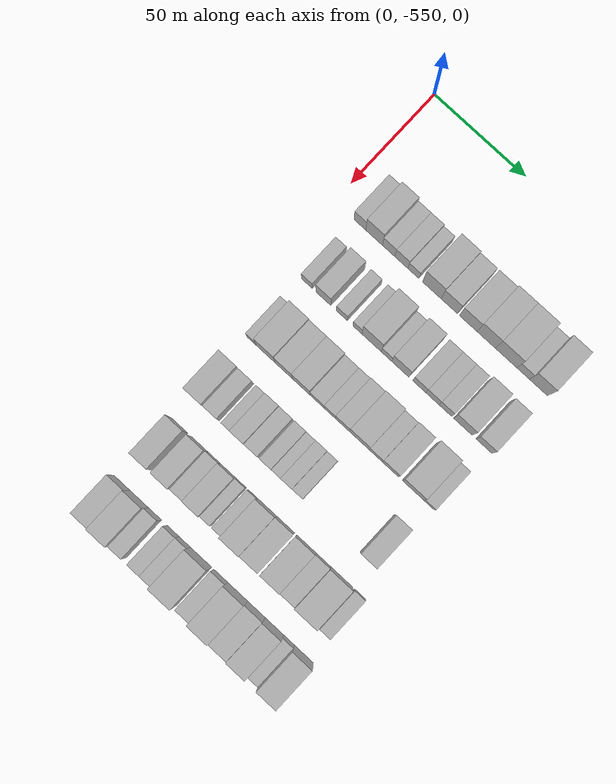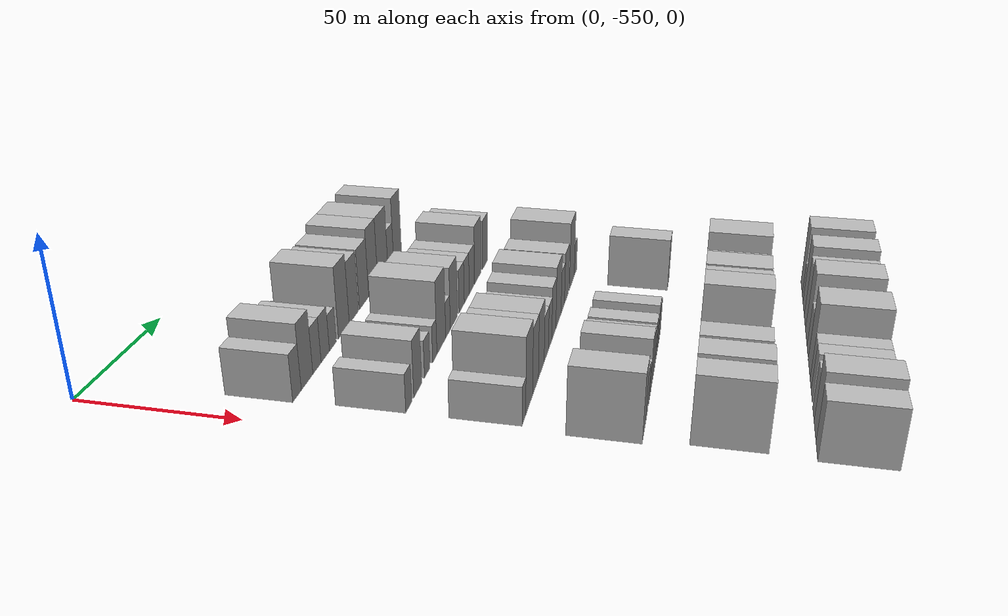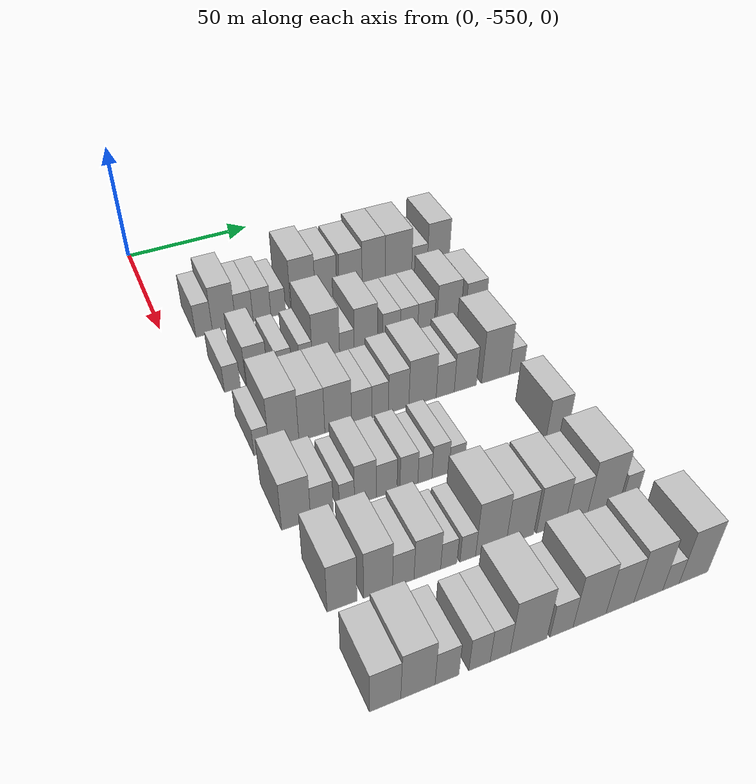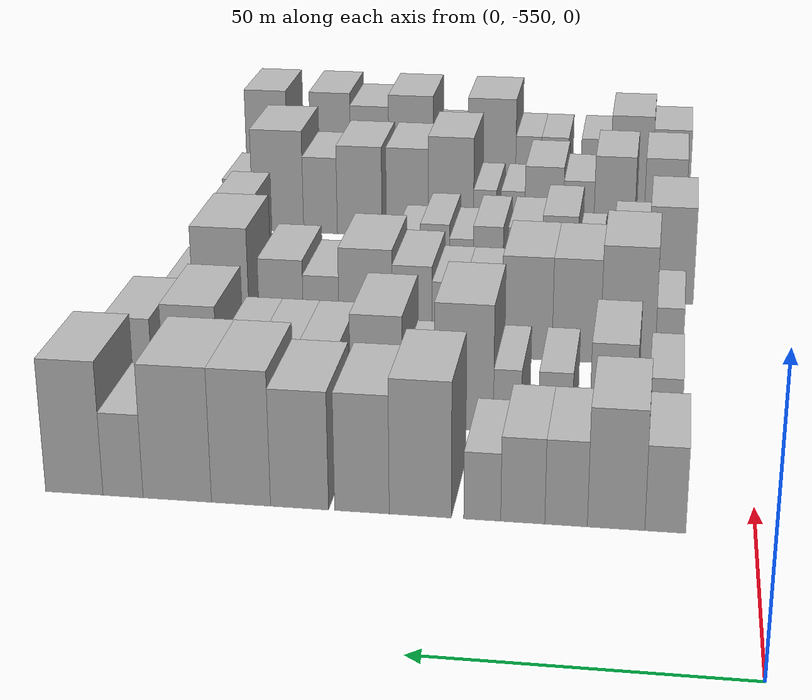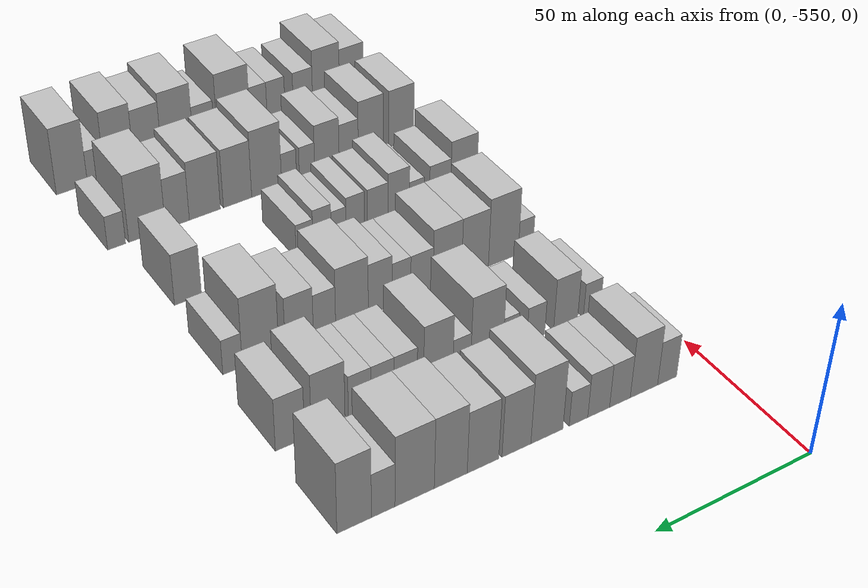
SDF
<sdf version="1.6">
 <world name="default">
  <model name="building_1">
   <static>1</static>
   <pose>50.0000 -535.7820 0 0.000000 0.000000 0.000000</pose>
   <link name="link">
    <pose>0 0 7.50 0 0 0</pose>
    <collision name="collision"><geometry><box><size>20.0000 6.4360 15.0000</size></box></geometry></collision>
    <visual name="visual">
     <cast_shadows>0</cast_shadows>
     <geometry><box><size>20.0000 6.4360 15.0000</size></box></geometry>
     <material>
      <script>
       <uri>model://HANNAS_wall/materials/scripts</uri>
       <uri>model://HANNAS_wall/materials/textures</uri>
       <name>vrc/HANNAS_wall</name>
      </script>
     </material>
    </visual>
   </link>
  </model>
  <model name="building_2">
   <static>1</static>
   <pose>50.0000 -528.0198 0 0.000000 0.000000 0.000000</pose>
   <link name="link">
    <pose>0 0 10.50 0 0 0</pose>
    <collision name="collision"><geometry><box><size>20.0000 9.0884 21.0000</size></box></geometry></collision>
    <visual name="visual">
     <cast_shadows>0</cast_shadows>
     <geometry><box><size>20.0000 9.0884 21.0000</size></box></geometry>
     <material>
      <script>
       <uri>model://HANNAS_wall/materials/scripts</uri>
       <uri>model://HANNAS_wall/materials/textures</uri>
       <name>vrc/HANNAS_wall</name>
      </script>
     </material>
    </visual>
   </link>
  </model>
  <model name="building_3">
   <static>1</static>
   <pose>50.0000 -520.0924 0 0.000000 0.000000 0.000000</pose>
   <link name="link">
    <pose>0 0 7.50 0 0 0</pose>
    <collision name="collision"><geometry><box><size>20.0000 6.7663 15.0000</size></box></geometry></collision>
    <visual name="visual">
     <cast_shadows>0</cast_shadows>
     <geometry><box><size>20.0000 6.7663 15.0000</size></box></geometry>
     <material>
      <script>
       <uri>model://HANNAS_wall/materials/scripts</uri>
       <uri>model://HANNAS_wall/materials/textures</uri>
       <name>vrc/HANNAS_wall</name>
      </script>
     </material>
    </visual>
   </link>
  </model>
  <model name="building_4">
   <static>1</static>
   <pose>50.0000 -513.1745 0 0.000000 0.000000 0.000000</pose>
   <link name="link">
    <pose>0 0 7.50 0 0 0</pose>
    <collision name="collision"><geometry><box><size>20.0000 7.0696 15.0000</size></box></geometry></collision>
    <visual name="visual">
     <cast_shadows>0</cast_shadows>
     <geometry><box><size>20.0000 7.0696 15.0000</size></box></geometry>
     <material>
      <script>
       <uri>model://HANNAS_wall/materials/scripts</uri>
       <uri>model://HANNAS_wall/materials/textures</uri>
       <name>vrc/HANNAS_wall</name>
      </script>
     </material>
    </visual>
   </link>
  </model>
  <model name="building_5">
   <static>1</static>
   <pose>50.0000 -506.6680 0 0.000000 0.000000 0.000000</pose>
   <link name="link">
    <pose>0 0 6.00 0 0 0</pose>
    <collision name="collision"><geometry><box><size>20.0000 5.9433 12.0000</size></box></geometry></collision>
    <visual name="visual">
     <cast_shadows>0</cast_shadows>
     <geometry><box><size>20.0000 5.9433 12.0000</size></box></geometry>
     <material>
      <script>
       <uri>model://HANNAS_wall/materials/scripts</uri>
       <uri>model://HANNAS_wall/materials/textures</uri>
       <name>vrc/HANNAS_wall</name>
      </script>
     </material>
    </visual>
   </link>
  </model>
  <model name="building_6">
   <static>1</static>
   <pose>50.0000 -496.6486 0 0.000000 0.000000 0.000000</pose>
   <link name="link">
    <pose>0 0 12.00 0 0 0</pose>
    <collision name="collision"><geometry><box><size>20.0000 10.0956 24.0000</size></box></geometry></collision>
    <visual name="visual">
     <cast_shadows>0</cast_shadows>
     <geometry><box><size>20.0000 10.0956 24.0000</size></box></geometry>
     <material>
      <script>
       <uri>model://HANNAS_wall/materials/scripts</uri>
       <uri>model://HANNAS_wall/materials/textures</uri>
       <name>vrc/HANNAS_wall</name>
      </script>
     </material>
    </visual>
   </link>
  </model>
  <model name="building_7">
   <static>1</static>
   <pose>50.0000 -487.1388 0 0.000000 0.000000 0.000000</pose>
   <link name="link">
    <pose>0 0 10.50 0 0 0</pose>
    <collision name="collision"><geometry><box><size>20.0000 8.9242 21.0000</size></box></geometry></collision>
    <visual name="visual">
     <cast_shadows>0</cast_shadows>
     <geometry><box><size>20.0000 8.9242 21.0000</size></box></geometry>
     <material>
      <script>
       <uri>model://HANNAS_wall/materials/scripts</uri>
       <uri>model://HANNAS_wall/materials/textures</uri>
       <name>vrc/HANNAS_wall</name>
      </script>
     </material>
    </visual>
   </link>
  </model>
  <model name="building_8">
   <static>1</static>
   <pose>50.0000 -476.8847 0 0.000000 0.000000 0.000000</pose>
   <link name="link">
    <pose>0 0 10.50 0 0 0</pose>
    <collision name="collision"><geometry><box><size>20.0000 9.5838 21.0000</size></box></geometry></collision>
    <visual name="visual">
     <cast_shadows>0</cast_shadows>
     <geometry><box><size>20.0000 9.5838 21.0000</size></box></geometry>
     <material>
      <script>
       <uri>model://HANNAS_wall/materials/scripts</uri>
       <uri>model://HANNAS_wall/materials/textures</uri>
       <name>vrc/HANNAS_wall</name>
      </script>
     </material>
    </visual>
   </link>
  </model>
  <model name="building_9">
   <static>1</static>
   <pose>50.0000 -467.1812 0 0.000000 0.000000 0.000000</pose>
   <link name="link">
    <pose>0 0 12.00 0 0 0</pose>
    <collision name="collision"><geometry><box><size>20.0000 9.8232 24.0000</size></box></geometry></collision>
    <visual name="visual">
     <cast_shadows>0</cast_shadows>
     <geometry><box><size>20.0000 9.8232 24.0000</size></box></geometry>
     <material>
      <script>
       <uri>model://HANNAS_wall/materials/scripts</uri>
       <uri>model://HANNAS_wall/materials/textures</uri>
       <name>vrc/HANNAS_wall</name>
      </script>
     </material>
    </visual>
   </link>
  </model>
  <model name="building_10">
   <static>1</static>
   <pose>50.0000 -456.5268 0 0.000000 0.000000 0.000000</pose>
   <link name="link">
    <pose>0 0 12.00 0 0 0</pose>
    <collision name="collision"><geometry><box><size>20.0000 11.4857 24.0000</size></box></geometry></collision>
    <visual name="visual">
     <cast_shadows>0</cast_shadows>
     <geometry><box><size>20.0000 11.4857 24.0000</size></box></geometry>
     <material>
      <script>
       <uri>model://HANNAS_wall/materials/scripts</uri>
       <uri>model://HANNAS_wall/materials/textures</uri>
       <name>vrc/HANNAS_wall</name>
      </script>
     </material>
    </visual>
   </link>
  </model>
  <model name="building_11">
   <static>1</static>
   <pose>50.0000 -447.3915 0 0.000000 0.000000 0.000000</pose>
   <link name="link">
    <pose>0 0 7.50 0 0 0</pose>
    <collision name="collision"><geometry><box><size>20.0000 6.7850 15.0000</size></box></geometry></collision>
    <visual name="visual">
     <cast_shadows>0</cast_shadows>
     <geometry><box><size>20.0000 6.7850 15.0000</size></box></geometry>
     <material>
      <script>
       <uri>model://HANNAS_wall/materials/scripts</uri>
       <uri>model://HANNAS_wall/materials/textures</uri>
       <name>vrc/HANNAS_wall</name>
      </script>
     </material>
    </visual>
   </link>
  </model>
  <model name="building_12">
   <static>1</static>
   <pose>50.0000 -439.1225 0 0.000000 0.000000 0.000000</pose>
   <link name="link">
    <pose>0 0 12.00 0 0 0</pose>
    <collision name="collision"><geometry><box><size>20.0000 9.7531 24.0000</size></box></geometry></collision>
    <visual name="visual">
     <cast_shadows>0</cast_shadows>
     <geometry><box><size>20.0000 9.7531 24.0000</size></box></geometry>
     <material>
      <script>
       <uri>model://HANNAS_wall/materials/scripts</uri>
       <uri>model://HANNAS_wall/materials/textures</uri>
       <name>vrc/HANNAS_wall</name>
      </script>
     </material>
    </visual>
   </link>
  </model>
  <model name="building_115">
   <static>1</static>
   <pose>82.0000 -535.0732 0 0.000000 0.000000 0.000000</pose>
   <link name="link">
    <pose>0 0 6.00 0 0 0</pose>
    <collision name="collision"><geometry><box><size>20.0000 5.8535 12.0000</size></box></geometry></collision>
    <visual name="visual">
     <cast_shadows>0</cast_shadows>
     <geometry><box><size>20.0000 5.8535 12.0000</size></box></geometry>
     <material>
      <script>
       <uri>model://HANNAS_wall/materials/scripts</uri>
       <uri>model://HANNAS_wall/materials/textures</uri>
       <name>vrc/HANNAS_wall</name>
      </script>
     </material>
    </visual>
   </link>
  </model>
  <model name="building_116">
   <static>1</static>
   <pose>82.0000 -526.0962 0 0.000000 0.000000 0.000000</pose>
   <link name="link">
    <pose>0 0 9.00 0 0 0</pose>
    <collision name="collision"><geometry><box><size>20.0000 8.1007 18.0000</size></box></geometry></collision>
    <visual name="visual">
     <cast_shadows>0</cast_shadows>
     <geometry><box><size>20.0000 8.1007 18.0000</size></box></geometry>
     <material>
      <script>
       <uri>model://HANNAS_wall/materials/scripts</uri>
       <uri>model://HANNAS_wall/materials/textures</uri>
       <name>vrc/HANNAS_wall</name>
      </script>
     </material>
    </visual>
   </link>
  </model>
  <model name="building_117">
   <static>1</static>
   <pose>82.0000 -516.0669 0 0.000000 0.000000 0.000000</pose>
   <link name="link">
    <pose>0 0 6.00 0 0 0</pose>
    <collision name="collision"><geometry><box><size>20.0000 5.9578 12.0000</size></box></geometry></collision>
    <visual name="visual">
     <cast_shadows>0</cast_shadows>
     <geometry><box><size>20.0000 5.9578 12.0000</size></box></geometry>
     <material>
      <script>
       <uri>model://HANNAS_wall/materials/scripts</uri>
       <uri>model://HANNAS_wall/materials/textures</uri>
       <name>vrc/HANNAS_wall</name>
      </script>
     </material>
    </visual>
   </link>
  </model>
  <model name="building_118">
   <static>1</static>
   <pose>82.0000 -507.6281 0 0.000000 0.000000 0.000000</pose>
   <link name="link">
    <pose>0 0 6.00 0 0 0</pose>
    <collision name="collision"><geometry><box><size>20.0000 4.9197 12.0000</size></box></geometry></collision>
    <visual name="visual">
     <cast_shadows>0</cast_shadows>
     <geometry><box><size>20.0000 4.9197 12.0000</size></box></geometry>
     <material>
      <script>
       <uri>model://HANNAS_wall/materials/scripts</uri>
       <uri>model://HANNAS_wall/materials/textures</uri>
       <name>vrc/HANNAS_wall</name>
      </script>
     </material>
    </visual>
   </link>
  </model>
  <model name="building_119">
   <static>1</static>
   <pose>82.0000 -499.9274 0 0.000000 0.000000 0.000000</pose>
   <link name="link">
    <pose>0 0 12.00 0 0 0</pose>
    <collision name="collision"><geometry><box><size>20.0000 10.4818 24.0000</size></box></geometry></collision>
    <visual name="visual">
     <cast_shadows>0</cast_shadows>
     <geometry><box><size>20.0000 10.4818 24.0000</size></box></geometry>
     <material>
      <script>
       <uri>model://HANNAS_wall/materials/scripts</uri>
       <uri>model://HANNAS_wall/materials/textures</uri>
       <name>vrc/HANNAS_wall</name>
      </script>
     </material>
    </visual>
   </link>
  </model>
  <model name="building_120">
   <static>1</static>
   <pose>82.0000 -491.8350 0 0.000000 0.000000 0.000000</pose>
   <link name="link">
    <pose>0 0 6.00 0 0 0</pose>
    <collision name="collision"><geometry><box><size>20.0000 5.7029 12.0000</size></box></geometry></collision>
    <visual name="visual">
     <cast_shadows>0</cast_shadows>
     <geometry><box><size>20.0000 5.7029 12.0000</size></box></geometry>
     <material>
      <script>
       <uri>model://HANNAS_wall/materials/scripts</uri>
       <uri>model://HANNAS_wall/materials/textures</uri>
       <name>vrc/HANNAS_wall</name>
      </script>
     </material>
    </visual>
   </link>
  </model>
  <model name="building_121">
   <static>1</static>
   <pose>82.0000 -484.3456 0 0.000000 0.000000 0.000000</pose>
   <link name="link">
    <pose>0 0 10.50 0 0 0</pose>
    <collision name="collision"><geometry><box><size>20.0000 9.2759 21.0000</size></box></geometry></collision>
    <visual name="visual">
     <cast_shadows>0</cast_shadows>
     <geometry><box><size>20.0000 9.2759 21.0000</size></box></geometry>
     <material>
      <script>
       <uri>model://HANNAS_wall/materials/scripts</uri>
       <uri>model://HANNAS_wall/materials/textures</uri>
       <name>vrc/HANNAS_wall</name>
      </script>
     </material>
    </visual>
   </link>
  </model>
  <model name="building_122">
   <static>1</static>
   <pose>82.0000 -474.1458 0 0.000000 0.000000 0.000000</pose>
   <link name="link">
    <pose>0 0 7.50 0 0 0</pose>
    <collision name="collision"><geometry><box><size>20.0000 7.1238 15.0000</size></box></geometry></collision>
    <visual name="visual">
     <cast_shadows>0</cast_shadows>
     <geometry><box><size>20.0000 7.1238 15.0000</size></box></geometry>
     <material>
      <script>
       <uri>model://HANNAS_wall/materials/scripts</uri>
       <uri>model://HANNAS_wall/materials/textures</uri>
       <name>vrc/HANNAS_wall</name>
      </script>
     </material>
    </visual>
   </link>
  </model>
  <model name="building_123">
   <static>1</static>
   <pose>82.0000 -467.0603 0 0.000000 0.000000 0.000000</pose>
   <link name="link">
    <pose>0 0 7.50 0 0 0</pose>
    <collision name="collision"><geometry><box><size>20.0000 7.0471 15.0000</size></box></geometry></collision>
    <visual name="visual">
     <cast_shadows>0</cast_shadows>
     <geometry><box><size>20.0000 7.0471 15.0000</size></box></geometry>
     <material>
      <script>
       <uri>model://HANNAS_wall/materials/scripts</uri>
       <uri>model://HANNAS_wall/materials/textures</uri>
       <name>vrc/HANNAS_wall</name>
      </script>
     </material>
    </visual>
   </link>
  </model>
  <model name="building_124">
   <static>1</static>
   <pose>82.0000 -460.1013 0 0.000000 0.000000 0.000000</pose>
   <link name="link">
    <pose>0 0 7.50 0 0 0</pose>
    <collision name="collision"><geometry><box><size>20.0000 6.8710 15.0000</size></box></geometry></collision>
    <visual name="visual">
     <cast_shadows>0</cast_shadows>
     <geometry><box><size>20.0000 6.8710 15.0000</size></box></geometry>
     <material>
      <script>
       <uri>model://HANNAS_wall/materials/scripts</uri>
       <uri>model://HANNAS_wall/materials/textures</uri>
       <name>vrc/HANNAS_wall</name>
      </script>
     </material>
    </visual>
   </link>
  </model>
  <model name="building_125">
   <static>1</static>
   <pose>82.0000 -450.6689 0 0.000000 0.000000 0.000000</pose>
   <link name="link">
    <pose>0 0 10.50 0 0 0</pose>
    <collision name="collision"><geometry><box><size>20.0000 9.9938 21.0000</size></box></geometry></collision>
    <visual name="visual">
     <cast_shadows>0</cast_shadows>
     <geometry><box><size>20.0000 9.9938 21.0000</size></box></geometry>
     <material>
      <script>
       <uri>model://HANNAS_wall/materials/scripts</uri>
       <uri>model://HANNAS_wall/materials/textures</uri>
       <name>vrc/HANNAS_wall</name>
      </script>
     </material>
    </visual>
   </link>
  </model>
  <model name="building_126">
   <static>1</static>
   <pose>82.0000 -439.3926 0 0.000000 0.000000 0.000000</pose>
   <link name="link">
    <pose>0 0 9.00 0 0 0</pose>
    <collision name="collision"><geometry><box><size>20.0000 8.5587 18.0000</size></box></geometry></collision>
    <visual name="visual">
     <cast_shadows>0</cast_shadows>
     <geometry><box><size>20.0000 8.5587 18.0000</size></box></geometry>
     <material>
      <script>
       <uri>model://HANNAS_wall/materials/scripts</uri>
       <uri>model://HANNAS_wall/materials/textures</uri>
       <name>vrc/HANNAS_wall</name>
      </script>
     </material>
    </visual>
   </link>
  </model>
  <model name="building_236">
   <static>1</static>
   <pose>114.0000 -535.3949 0 0.000000 0.000000 0.000000</pose>
   <link name="link">
    <pose>0 0 6.00 0 0 0</pose>
    <collision name="collision"><geometry><box><size>20.0000 5.2102 12.0000</size></box></geometry></collision>
    <visual name="visual">
     <cast_shadows>0</cast_shadows>
     <geometry><box><size>20.0000 5.2102 12.0000</size></box></geometry>
     <material>
      <script>
       <uri>model://HANNAS_wall/materials/scripts</uri>
       <uri>model://HANNAS_wall/materials/textures</uri>
       <name>vrc/HANNAS_wall</name>
      </script>
     </material>
    </visual>
   </link>
  </model>
  <model name="building_237">
   <static>1</static>
   <pose>114.0000 -527.5927 0 0.000000 0.000000 0.000000</pose>
   <link name="link">
    <pose>0 0 12.00 0 0 0</pose>
    <collision name="collision"><geometry><box><size>20.0000 10.3943 24.0000</size></box></geometry></collision>
    <visual name="visual">
     <cast_shadows>0</cast_shadows>
     <geometry><box><size>20.0000 10.3943 24.0000</size></box></geometry>
     <material>
      <script>
       <uri>model://HANNAS_wall/materials/scripts</uri>
       <uri>model://HANNAS_wall/materials/textures</uri>
       <name>vrc/HANNAS_wall</name>
      </script>
     </material>
    </visual>
   </link>
  </model>
  <model name="building_238">
   <static>1</static>
   <pose>114.0000 -517.7886 0 0.000000 0.000000 0.000000</pose>
   <link name="link">
    <pose>0 0 10.50 0 0 0</pose>
    <collision name="collision"><geometry><box><size>20.0000 9.2138 21.0000</size></box></geometry></collision>
    <visual name="visual">
     <cast_shadows>0</cast_shadows>
     <geometry><box><size>20.0000 9.2138 21.0000</size></box></geometry>
     <material>
      <script>
       <uri>model://HANNAS_wall/materials/scripts</uri>
       <uri>model://HANNAS_wall/materials/textures</uri>
       <name>vrc/HANNAS_wall</name>
      </script>
     </material>
    </visual>
   </link>
  </model>
  <model name="building_239">
   <static>1</static>
   <pose>114.0000 -508.3571 0 0.000000 0.000000 0.000000</pose>
   <link name="link">
    <pose>0 0 10.50 0 0 0</pose>
    <collision name="collision"><geometry><box><size>20.0000 9.6493 21.0000</size></box></geometry></collision>
    <visual name="visual">
     <cast_shadows>0</cast_shadows>
     <geometry><box><size>20.0000 9.6493 21.0000</size></box></geometry>
     <material>
      <script>
       <uri>model://HANNAS_wall/materials/scripts</uri>
       <uri>model://HANNAS_wall/materials/textures</uri>
       <name>vrc/HANNAS_wall</name>
      </script>
     </material>
    </visual>
   </link>
  </model>
  <model name="building_240">
   <static>1</static>
   <pose>114.0000 -499.8160 0 0.000000 0.000000 0.000000</pose>
   <link name="link">
    <pose>0 0 7.50 0 0 0</pose>
    <collision name="collision"><geometry><box><size>20.0000 7.4329 15.0000</size></box></geometry></collision>
    <visual name="visual">
     <cast_shadows>0</cast_shadows>
     <geometry><box><size>20.0000 7.4329 15.0000</size></box></geometry>
     <material>
      <script>
       <uri>model://HANNAS_wall/materials/scripts</uri>
       <uri>model://HANNAS_wall/materials/textures</uri>
       <name>vrc/HANNAS_wall</name>
      </script>
     </material>
    </visual>
   </link>
  </model>
  <model name="building_241">
   <static>1</static>
   <pose>114.0000 -493.0335 0 0.000000 0.000000 0.000000</pose>
   <link name="link">
    <pose>0 0 7.50 0 0 0</pose>
    <collision name="collision"><geometry><box><size>20.0000 6.1319 15.0000</size></box></geometry></collision>
    <visual name="visual">
     <cast_shadows>0</cast_shadows>
     <geometry><box><size>20.0000 6.1319 15.0000</size></box></geometry>
     <material>
      <script>
       <uri>model://HANNAS_wall/materials/scripts</uri>
       <uri>model://HANNAS_wall/materials/textures</uri>
       <name>vrc/HANNAS_wall</name>
      </script>
     </material>
    </visual>
   </link>
  </model>
  <model name="building_242">
   <static>1</static>
   <pose>114.0000 -486.1178 0 0.000000 0.000000 0.000000</pose>
   <link name="link">
    <pose>0 0 9.00 0 0 0</pose>
    <collision name="collision"><geometry><box><size>20.0000 7.6995 18.0000</size></box></geometry></collision>
    <visual name="visual">
     <cast_shadows>0</cast_shadows>
     <geometry><box><size>20.0000 7.6995 18.0000</size></box></geometry>
     <material>
      <script>
       <uri>model://HANNAS_wall/materials/scripts</uri>
       <uri>model://HANNAS_wall/materials/textures</uri>
       <name>vrc/HANNAS_wall</name>
      </script>
     </material>
    </visual>
   </link>
  </model>
  <model name="building_243">
   <static>1</static>
   <pose>114.0000 -477.0387 0 0.000000 0.000000 0.000000</pose>
   <link name="link">
    <pose>0 0 10.50 0 0 0</pose>
    <collision name="collision"><geometry><box><size>20.0000 10.4588 21.0000</size></box></geometry></collision>
    <visual name="visual">
     <cast_shadows>0</cast_shadows>
     <geometry><box><size>20.0000 10.4588 21.0000</size></box></geometry>
     <material>
      <script>
       <uri>model://HANNAS_wall/materials/scripts</uri>
       <uri>model://HANNAS_wall/materials/textures</uri>
       <name>vrc/HANNAS_wall</name>
      </script>
     </material>
    </visual>
   </link>
  </model>
  <model name="building_244">
   <static>1</static>
   <pose>114.0000 -468.3015 0 0.000000 0.000000 0.000000</pose>
   <link name="link">
    <pose>0 0 7.50 0 0 0</pose>
    <collision name="collision"><geometry><box><size>20.0000 7.0157 15.0000</size></box></geometry></collision>
    <visual name="visual">
     <cast_shadows>0</cast_shadows>
     <geometry><box><size>20.0000 7.0157 15.0000</size></box></geometry>
     <material>
      <script>
       <uri>model://HANNAS_wall/materials/scripts</uri>
       <uri>model://HANNAS_wall/materials/textures</uri>
       <name>vrc/HANNAS_wall</name>
      </script>
     </material>
    </visual>
   </link>
  </model>
  <model name="building_245">
   <static>1</static>
   <pose>114.0000 -460.4083 0 0.000000 0.000000 0.000000</pose>
   <link name="link">
    <pose>0 0 9.00 0 0 0</pose>
    <collision name="collision"><geometry><box><size>20.0000 8.7708 18.0000</size></box></geometry></collision>
    <visual name="visual">
     <cast_shadows>0</cast_shadows>
     <geometry><box><size>20.0000 8.7708 18.0000</size></box></geometry>
     <material>
      <script>
       <uri>model://HANNAS_wall/materials/scripts</uri>
       <uri>model://HANNAS_wall/materials/textures</uri>
       <name>vrc/HANNAS_wall</name>
      </script>
     </material>
    </visual>
   </link>
  </model>
  <model name="building_246">
   <static>1</static>
   <pose>114.0000 -448.4534 0 0.000000 0.000000 0.000000</pose>
   <link name="link">
    <pose>0 0 12.00 0 0 0</pose>
    <collision name="collision"><geometry><box><size>20.0000 11.1389 24.0000</size></box></geometry></collision>
    <visual name="visual">
     <cast_shadows>0</cast_shadows>
     <geometry><box><size>20.0000 11.1389 24.0000</size></box></geometry>
     <material>
      <script>
       <uri>model://HANNAS_wall/materials/scripts</uri>
       <uri>model://HANNAS_wall/materials/textures</uri>
       <name>vrc/HANNAS_wall</name>
      </script>
     </material>
    </visual>
   </link>
  </model>
  <model name="building_247">
   <static>1</static>
   <pose>114.0000 -439.9446 0 0.000000 0.000000 0.000000</pose>
   <link name="link">
    <pose>0 0 6.00 0 0 0</pose>
    <collision name="collision"><geometry><box><size>20.0000 5.8789 12.0000</size></box></geometry></collision>
    <visual name="visual">
     <cast_shadows>0</cast_shadows>
     <geometry><box><size>20.0000 5.8789 12.0000</size></box></geometry>
     <material>
      <script>
       <uri>model://HANNAS_wall/materials/scripts</uri>
       <uri>model://HANNAS_wall/materials/textures</uri>
       <name>vrc/HANNAS_wall</name>
      </script>
     </material>
    </visual>
   </link>
  </model>
  <model name="building_352">
   <static>1</static>
   <pose>146.0000 -535.2931 0 0.000000 0.000000 0.000000</pose>
   <link name="link">
    <pose>0 0 10.50 0 0 0</pose>
    <collision name="collision"><geometry><box><size>20.0000 9.4139 21.0000</size></box></geometry></collision>
    <visual name="visual">
     <cast_shadows>0</cast_shadows>
     <geometry><box><size>20.0000 9.4139 21.0000</size></box></geometry>
     <material>
      <script>
       <uri>model://HANNAS_wall/materials/scripts</uri>
       <uri>model://HANNAS_wall/materials/textures</uri>
       <name>vrc/HANNAS_wall</name>
      </script>
     </material>
    </visual>
   </link>
  </model>
  <model name="building_353">
   <static>1</static>
   <pose>146.0000 -526.8417 0 0.000000 0.000000 0.000000</pose>
   <link name="link">
    <pose>0 0 7.50 0 0 0</pose>
    <collision name="collision"><geometry><box><size>20.0000 7.4889 15.0000</size></box></geometry></collision>
    <visual name="visual">
     <cast_shadows>0</cast_shadows>
     <geometry><box><size>20.0000 7.4889 15.0000</size></box></geometry>
     <material>
      <script>
       <uri>model://HANNAS_wall/materials/scripts</uri>
       <uri>model://HANNAS_wall/materials/textures</uri>
       <name>vrc/HANNAS_wall</name>
      </script>
     </material>
    </visual>
   </link>
  </model>
  <model name="building_354">
   <static>1</static>
   <pose>146.0000 -518.5686 0 0.000000 0.000000 0.000000</pose>
   <link name="link">
    <pose>0 0 6.00 0 0 0</pose>
    <collision name="collision"><geometry><box><size>20.0000 5.0574 12.0000</size></box></geometry></collision>
    <visual name="visual">
     <cast_shadows>0</cast_shadows>
     <geometry><box><size>20.0000 5.0574 12.0000</size></box></geometry>
     <material>
      <script>
       <uri>model://HANNAS_wall/materials/scripts</uri>
       <uri>model://HANNAS_wall/materials/textures</uri>
       <name>vrc/HANNAS_wall</name>
      </script>
     </material>
    </visual>
   </link>
  </model>
  <model name="building_355">
   <static>1</static>
   <pose>146.0000 -512.3427 0 0.000000 0.000000 0.000000</pose>
   <link name="link">
    <pose>0 0 9.00 0 0 0</pose>
    <collision name="collision"><geometry><box><size>20.0000 7.3942 18.0000</size></box></geometry></collision>
    <visual name="visual">
     <cast_shadows>0</cast_shadows>
     <geometry><box><size>20.0000 7.3942 18.0000</size></box></geometry>
     <material>
      <script>
       <uri>model://HANNAS_wall/materials/scripts</uri>
       <uri>model://HANNAS_wall/materials/textures</uri>
       <name>vrc/HANNAS_wall</name>
      </script>
     </material>
    </visual>
   </link>
  </model>
  <model name="building_356">
   <static>1</static>
   <pose>146.0000 -505.1036 0 0.000000 0.000000 0.000000</pose>
   <link name="link">
    <pose>0 0 7.50 0 0 0</pose>
    <collision name="collision"><geometry><box><size>20.0000 7.0841 15.0000</size></box></geometry></collision>
    <visual name="visual">
     <cast_shadows>0</cast_shadows>
     <geometry><box><size>20.0000 7.0841 15.0000</size></box></geometry>
     <material>
      <script>
       <uri>model://HANNAS_wall/materials/scripts</uri>
       <uri>model://HANNAS_wall/materials/textures</uri>
       <name>vrc/HANNAS_wall</name>
      </script>
     </material>
    </visual>
   </link>
  </model>
  <model name="building_357">
   <static>1</static>
   <pose>146.0000 -497.4288 0 0.000000 0.000000 0.000000</pose>
   <link name="link">
    <pose>0 0 7.50 0 0 0</pose>
    <collision name="collision"><geometry><box><size>20.0000 6.2654 15.0000</size></box></geometry></collision>
    <visual name="visual">
     <cast_shadows>0</cast_shadows>
     <geometry><box><size>20.0000 6.2654 15.0000</size></box></geometry>
     <material>
      <script>
       <uri>model://HANNAS_wall/materials/scripts</uri>
       <uri>model://HANNAS_wall/materials/textures</uri>
       <name>vrc/HANNAS_wall</name>
      </script>
     </material>
    </visual>
   </link>
  </model>
  <model name="building_358">
   <static>1</static>
   <pose>146.0000 -491.8044 0 0.000000 0.000000 0.000000</pose>
   <link name="link">
    <pose>0 0 6.00 0 0 0</pose>
    <collision name="collision"><geometry><box><size>20.0000 4.9833 12.0000</size></box></geometry></collision>
    <visual name="visual">
     <cast_shadows>0</cast_shadows>
     <geometry><box><size>20.0000 4.9833 12.0000</size></box></geometry>
     <material>
      <script>
       <uri>model://HANNAS_wall/materials/scripts</uri>
       <uri>model://HANNAS_wall/materials/textures</uri>
       <name>vrc/HANNAS_wall</name>
      </script>
     </material>
    </visual>
   </link>
  </model>
  <model name="building_359">
   <static>1</static>
   <pose>146.0000 -486.2767 0 0.000000 0.000000 0.000000</pose>
   <link name="link">
    <pose>0 0 7.50 0 0 0</pose>
    <collision name="collision"><geometry><box><size>20.0000 6.0720 15.0000</size></box></geometry></collision>
    <visual name="visual">
     <cast_shadows>0</cast_shadows>
     <geometry><box><size>20.0000 6.0720 15.0000</size></box></geometry>
     <material>
      <script>
       <uri>model://HANNAS_wall/materials/scripts</uri>
       <uri>model://HANNAS_wall/materials/textures</uri>
       <name>vrc/HANNAS_wall</name>
      </script>
     </material>
    </visual>
   </link>
  </model>
  <model name="building_360">
   <static>1</static>
   <pose>146.0000 -480.4393 0 0.000000 0.000000 0.000000</pose>
   <link name="link">
    <pose>0 0 6.00 0 0 0</pose>
    <collision name="collision"><geometry><box><size>20.0000 5.6028 12.0000</size></box></geometry></collision>
    <visual name="visual">
     <cast_shadows>0</cast_shadows>
     <geometry><box><size>20.0000 5.6028 12.0000</size></box></geometry>
     <material>
      <script>
       <uri>model://HANNAS_wall/materials/scripts</uri>
       <uri>model://HANNAS_wall/materials/textures</uri>
       <name>vrc/HANNAS_wall</name>
      </script>
     </material>
    </visual>
   </link>
  </model>
  <model name="building_361">
   <static>1</static>
   <pose>146.0000 -442.9354 0 0.000000 0.000000 0.000000</pose>
   <link name="link">
    <pose>0 0 9.00 0 0 0</pose>
    <collision name="collision"><geometry><box><size>20.0000 8.4683 18.0000</size></box></geometry></collision>
    <visual name="visual">
     <cast_shadows>0</cast_shadows>
     <geometry><box><size>20.0000 8.4683 18.0000</size></box></geometry>
     <material>
      <script>
       <uri>model://HANNAS_wall/materials/scripts</uri>
       <uri>model://HANNAS_wall/materials/textures</uri>
       <name>vrc/HANNAS_wall</name>
      </script>
     </material>
    </visual>
   </link>
  </model>
  <model name="building_460">
   <static>1</static>
   <pose>178.0000 -533.4293 0 0.000000 0.000000 0.000000</pose>
   <link name="link">
    <pose>0 0 10.50 0 0 0</pose>
    <collision name="collision"><geometry><box><size>20.0000 9.1415 21.0000</size></box></geometry></collision>
    <visual name="visual">
     <cast_shadows>0</cast_shadows>
     <geometry><box><size>20.0000 9.1415 21.0000</size></box></geometry>
     <material>
      <script>
       <uri>model://HANNAS_wall/materials/scripts</uri>
       <uri>model://HANNAS_wall/materials/textures</uri>
       <name>vrc/HANNAS_wall</name>
      </script>
     </material>
    </visual>
   </link>
  </model>
  <model name="building_461">
   <static>1</static>
   <pose>178.0000 -522.3233 0 0.000000 0.000000 0.000000</pose>
   <link name="link">
    <pose>0 0 10.50 0 0 0</pose>
    <collision name="collision"><geometry><box><size>20.0000 9.0705 21.0000</size></box></geometry></collision>
    <visual name="visual">
     <cast_shadows>0</cast_shadows>
     <geometry><box><size>20.0000 9.0705 21.0000</size></box></geometry>
     <material>
      <script>
       <uri>model://HANNAS_wall/materials/scripts</uri>
       <uri>model://HANNAS_wall/materials/textures</uri>
       <name>vrc/HANNAS_wall</name>
      </script>
     </material>
    </visual>
   </link>
  </model>
  <model name="building_462">
   <static>1</static>
   <pose>178.0000 -514.3670 0 0.000000 0.000000 0.000000</pose>
   <link name="link">
    <pose>0 0 7.50 0 0 0</pose>
    <collision name="collision"><geometry><box><size>20.0000 6.8421 15.0000</size></box></geometry></collision>
    <visual name="visual">
     <cast_shadows>0</cast_shadows>
     <geometry><box><size>20.0000 6.8421 15.0000</size></box></geometry>
     <material>
      <script>
       <uri>model://HANNAS_wall/materials/scripts</uri>
       <uri>model://HANNAS_wall/materials/textures</uri>
       <name>vrc/HANNAS_wall</name>
      </script>
     </material>
    </visual>
   </link>
  </model>
  <model name="building_463">
   <static>1</static>
   <pose>178.0000 -506.6354 0 0.000000 0.000000 0.000000</pose>
   <link name="link">
    <pose>0 0 9.00 0 0 0</pose>
    <collision name="collision"><geometry><box><size>20.0000 8.6212 18.0000</size></box></geometry></collision>
    <visual name="visual">
     <cast_shadows>0</cast_shadows>
     <geometry><box><size>20.0000 8.6212 18.0000</size></box></geometry>
     <material>
      <script>
       <uri>model://HANNAS_wall/materials/scripts</uri>
       <uri>model://HANNAS_wall/materials/textures</uri>
       <name>vrc/HANNAS_wall</name>
      </script>
     </material>
    </visual>
   </link>
  </model>
  <model name="building_464">
   <static>1</static>
   <pose>178.0000 -499.6477 0 0.000000 0.000000 0.000000</pose>
   <link name="link">
    <pose>0 0 6.00 0 0 0</pose>
    <collision name="collision"><geometry><box><size>20.0000 5.3541 12.0000</size></box></geometry></collision>
    <visual name="visual">
     <cast_shadows>0</cast_shadows>
     <geometry><box><size>20.0000 5.3541 12.0000</size></box></geometry>
     <material>
      <script>
       <uri>model://HANNAS_wall/materials/scripts</uri>
       <uri>model://HANNAS_wall/materials/textures</uri>
       <name>vrc/HANNAS_wall</name>
      </script>
     </material>
    </visual>
   </link>
  </model>
  <model name="building_465">
   <static>1</static>
   <pose>178.0000 -493.3802 0 0.000000 0.000000 0.000000</pose>
   <link name="link">
    <pose>0 0 6.00 0 0 0</pose>
    <collision name="collision"><geometry><box><size>20.0000 5.1809 12.0000</size></box></geometry></collision>
    <visual name="visual">
     <cast_shadows>0</cast_shadows>
     <geometry><box><size>20.0000 5.1809 12.0000</size></box></geometry>
     <material>
      <script>
       <uri>model://HANNAS_wall/materials/scripts</uri>
       <uri>model://HANNAS_wall/materials/textures</uri>
       <name>vrc/HANNAS_wall</name>
      </script>
     </material>
    </visual>
   </link>
  </model>
  <model name="building_466">
   <static>1</static>
   <pose>178.0000 -485.6471 0 0.000000 0.000000 0.000000</pose>
   <link name="link">
    <pose>0 0 12.00 0 0 0</pose>
    <collision name="collision"><geometry><box><size>20.0000 10.2852 24.0000</size></box></geometry></collision>
    <visual name="visual">
     <cast_shadows>0</cast_shadows>
     <geometry><box><size>20.0000 10.2852 24.0000</size></box></geometry>
     <material>
      <script>
       <uri>model://HANNAS_wall/materials/scripts</uri>
       <uri>model://HANNAS_wall/materials/textures</uri>
       <name>vrc/HANNAS_wall</name>
      </script>
     </material>
    </visual>
   </link>
  </model>
  <model name="building_467">
   <static>1</static>
   <pose>178.0000 -475.7231 0 0.000000 0.000000 0.000000</pose>
   <link name="link">
    <pose>0 0 10.50 0 0 0</pose>
    <collision name="collision"><geometry><box><size>20.0000 9.5628 21.0000</size></box></geometry></collision>
    <visual name="visual">
     <cast_shadows>0</cast_shadows>
     <geometry><box><size>20.0000 9.5628 21.0000</size></box></geometry>
     <material>
      <script>
       <uri>model://HANNAS_wall/materials/scripts</uri>
       <uri>model://HANNAS_wall/materials/textures</uri>
       <name>vrc/HANNAS_wall</name>
      </script>
     </material>
    </visual>
   </link>
  </model>
  <model name="building_468">
   <static>1</static>
   <pose>178.0000 -464.7885 0 0.000000 0.000000 0.000000</pose>
   <link name="link">
    <pose>0 0 10.50 0 0 0</pose>
    <collision name="collision"><geometry><box><size>20.0000 10.3062 21.0000</size></box></geometry></collision>
    <visual name="visual">
     <cast_shadows>0</cast_shadows>
     <geometry><box><size>20.0000 10.3062 21.0000</size></box></geometry>
     <material>
      <script>
       <uri>model://HANNAS_wall/materials/scripts</uri>
       <uri>model://HANNAS_wall/materials/textures</uri>
       <name>vrc/HANNAS_wall</name>
      </script>
     </material>
    </visual>
   </link>
  </model>
  <model name="building_469">
   <static>1</static>
   <pose>178.0000 -455.7315 0 0.000000 0.000000 0.000000</pose>
   <link name="link">
    <pose>0 0 9.00 0 0 0</pose>
    <collision name="collision"><geometry><box><size>20.0000 7.8077 18.0000</size></box></geometry></collision>
    <visual name="visual">
     <cast_shadows>0</cast_shadows>
     <geometry><box><size>20.0000 7.8077 18.0000</size></box></geometry>
     <material>
      <script>
       <uri>model://HANNAS_wall/materials/scripts</uri>
       <uri>model://HANNAS_wall/materials/textures</uri>
       <name>vrc/HANNAS_wall</name>
      </script>
     </material>
    </visual>
   </link>
  </model>
  <model name="building_470">
   <static>1</static>
   <pose>178.0000 -445.9116 0 0.000000 0.000000 0.000000</pose>
   <link name="link">
    <pose>0 0 12.00 0 0 0</pose>
    <collision name="collision"><geometry><box><size>20.0000 11.8320 24.0000</size></box></geometry></collision>
    <visual name="visual">
     <cast_shadows>0</cast_shadows>
     <geometry><box><size>20.0000 11.8320 24.0000</size></box></geometry>
     <material>
      <script>
       <uri>model://HANNAS_wall/materials/scripts</uri>
       <uri>model://HANNAS_wall/materials/textures</uri>
       <name>vrc/HANNAS_wall</name>
      </script>
     </material>
    </visual>
   </link>
  </model>
  <model name="building_471">
   <static>1</static>
   <pose>178.0000 -436.1383 0 0.000000 0.000000 0.000000</pose>
   <link name="link">
    <pose>0 0 6.00 0 0 0</pose>
    <collision name="collision"><geometry><box><size>20.0000 5.7147 12.0000</size></box></geometry></collision>
    <visual name="visual">
     <cast_shadows>0</cast_shadows>
     <geometry><box><size>20.0000 5.7147 12.0000</size></box></geometry>
     <material>
      <script>
       <uri>model://HANNAS_wall/materials/scripts</uri>
       <uri>model://HANNAS_wall/materials/textures</uri>
       <name>vrc/HANNAS_wall</name>
      </script>
     </material>
    </visual>
   </link>
  </model>
  <model name="building_586">
   <static>1</static>
   <pose>210.0000 -534.5392 0 0.000000 0.000000 0.000000</pose>
   <link name="link">
    <pose>0 0 9.00 0 0 0</pose>
    <collision name="collision"><geometry><box><size>20.0000 8.9216 18.0000</size></box></geometry></collision>
    <visual name="visual">
     <cast_shadows>0</cast_shadows>
     <geometry><box><size>20.0000 8.9216 18.0000</size></box></geometry>
     <material>
      <script>
       <uri>model://HANNAS_wall/materials/scripts</uri>
       <uri>model://HANNAS_wall/materials/textures</uri>
       <name>vrc/HANNAS_wall</name>
      </script>
     </material>
    </visual>
   </link>
  </model>
  <model name="building_587">
   <static>1</static>
   <pose>210.0000 -525.0857 0 0.000000 0.000000 0.000000</pose>
   <link name="link">
    <pose>0 0 10.50 0 0 0</pose>
    <collision name="collision"><geometry><box><size>20.0000 9.9854 21.0000</size></box></geometry></collision>
    <visual name="visual">
     <cast_shadows>0</cast_shadows>
     <geometry><box><size>20.0000 9.9854 21.0000</size></box></geometry>
     <material>
      <script>
       <uri>model://HANNAS_wall/materials/scripts</uri>
       <uri>model://HANNAS_wall/materials/textures</uri>
       <name>vrc/HANNAS_wall</name>
      </script>
     </material>
    </visual>
   </link>
  </model>
  <model name="building_588">
   <static>1</static>
   <pose>210.0000 -516.5518 0 0.000000 0.000000 0.000000</pose>
   <link name="link">
    <pose>0 0 7.50 0 0 0</pose>
    <collision name="collision"><geometry><box><size>20.0000 7.0824 15.0000</size></box></geometry></collision>
    <visual name="visual">
     <cast_shadows>0</cast_shadows>
     <geometry><box><size>20.0000 7.0824 15.0000</size></box></geometry>
     <material>
      <script>
       <uri>model://HANNAS_wall/materials/scripts</uri>
       <uri>model://HANNAS_wall/materials/textures</uri>
       <name>vrc/HANNAS_wall</name>
      </script>
     </material>
    </visual>
   </link>
  </model>
  <model name="building_589">
   <static>1</static>
   <pose>210.0000 -506.7606 0 0.000000 0.000000 0.000000</pose>
   <link name="link">
    <pose>0 0 7.50 0 0 0</pose>
    <collision name="collision"><geometry><box><size>20.0000 6.4999 15.0000</size></box></geometry></collision>
    <visual name="visual">
     <cast_shadows>0</cast_shadows>
     <geometry><box><size>20.0000 6.4999 15.0000</size></box></geometry>
     <material>
      <script>
       <uri>model://HANNAS_wall/materials/scripts</uri>
       <uri>model://HANNAS_wall/materials/textures</uri>
       <name>vrc/HANNAS_wall</name>
      </script>
     </material>
    </visual>
   </link>
  </model>
  <model name="building_590">
   <static>1</static>
   <pose>210.0000 -500.4369 0 0.000000 0.000000 0.000000</pose>
   <link name="link">
    <pose>0 0 7.50 0 0 0</pose>
    <collision name="collision"><geometry><box><size>20.0000 6.1474 15.0000</size></box></geometry></collision>
    <visual name="visual">
     <cast_shadows>0</cast_shadows>
     <geometry><box><size>20.0000 6.1474 15.0000</size></box></geometry>
     <material>
      <script>
       <uri>model://HANNAS_wall/materials/scripts</uri>
       <uri>model://HANNAS_wall/materials/textures</uri>
       <name>vrc/HANNAS_wall</name>
      </script>
     </material>
    </visual>
   </link>
  </model>
  <model name="building_591">
   <static>1</static>
   <pose>210.0000 -491.5670 0 0.000000 0.000000 0.000000</pose>
   <link name="link">
    <pose>0 0 12.00 0 0 0</pose>
    <collision name="collision"><geometry><box><size>20.0000 11.5925 24.0000</size></box></geometry></collision>
    <visual name="visual">
     <cast_shadows>0</cast_shadows>
     <geometry><box><size>20.0000 11.5925 24.0000</size></box></geometry>
     <material>
      <script>
       <uri>model://HANNAS_wall/materials/scripts</uri>
       <uri>model://HANNAS_wall/materials/textures</uri>
       <name>vrc/HANNAS_wall</name>
      </script>
     </material>
    </visual>
   </link>
  </model>
  <model name="building_592">
   <static>1</static>
   <pose>210.0000 -481.0658 0 0.000000 0.000000 0.000000</pose>
   <link name="link">
    <pose>0 0 7.50 0 0 0</pose>
    <collision name="collision"><geometry><box><size>20.0000 7.4098 15.0000</size></box></geometry></collision>
    <visual name="visual">
     <cast_shadows>0</cast_shadows>
     <geometry><box><size>20.0000 7.4098 15.0000</size></box></geometry>
     <material>
      <script>
       <uri>model://HANNAS_wall/materials/scripts</uri>
       <uri>model://HANNAS_wall/materials/textures</uri>
       <name>vrc/HANNAS_wall</name>
      </script>
     </material>
    </visual>
   </link>
  </model>
  <model name="building_593">
   <static>1</static>
   <pose>210.0000 -471.9364 0 0.000000 0.000000 0.000000</pose>
   <link name="link">
    <pose>0 0 12.00 0 0 0</pose>
    <collision name="collision"><geometry><box><size>20.0000 10.8490 24.0000</size></box></geometry></collision>
    <visual name="visual">
     <cast_shadows>0</cast_shadows>
     <geometry><box><size>20.0000 10.8490 24.0000</size></box></geometry>
     <material>
      <script>
       <uri>model://HANNAS_wall/materials/scripts</uri>
       <uri>model://HANNAS_wall/materials/textures</uri>
       <name>vrc/HANNAS_wall</name>
      </script>
     </material>
    </visual>
   </link>
  </model>
  <model name="building_594">
   <static>1</static>
   <pose>210.0000 -461.8251 0 0.000000 0.000000 0.000000</pose>
   <link name="link">
    <pose>0 0 10.50 0 0 0</pose>
    <collision name="collision"><geometry><box><size>20.0000 9.3736 21.0000</size></box></geometry></collision>
    <visual name="visual">
     <cast_shadows>0</cast_shadows>
     <geometry><box><size>20.0000 9.3736 21.0000</size></box></geometry>
     <material>
      <script>
       <uri>model://HANNAS_wall/materials/scripts</uri>
       <uri>model://HANNAS_wall/materials/textures</uri>
       <name>vrc/HANNAS_wall</name>
      </script>
     </material>
    </visual>
   </link>
  </model>
  <model name="building_595">
   <static>1</static>
   <pose>210.0000 -452.2032 0 0.000000 0.000000 0.000000</pose>
   <link name="link">
    <pose>0 0 12.00 0 0 0</pose>
    <collision name="collision"><geometry><box><size>20.0000 9.8702 24.0000</size></box></geometry></collision>
    <visual name="visual">
     <cast_shadows>0</cast_shadows>
     <geometry><box><size>20.0000 9.8702 24.0000</size></box></geometry>
     <material>
      <script>
       <uri>model://HANNAS_wall/materials/scripts</uri>
       <uri>model://HANNAS_wall/materials/textures</uri>
       <name>vrc/HANNAS_wall</name>
      </script>
     </material>
    </visual>
   </link>
  </model>
  <model name="building_596">
   <static>1</static>
   <pose>210.0000 -444.3876 0 0.000000 0.000000 0.000000</pose>
   <link name="link">
    <pose>0 0 6.00 0 0 0</pose>
    <collision name="collision"><geometry><box><size>20.0000 5.7609 12.0000</size></box></geometry></collision>
    <visual name="visual">
     <cast_shadows>0</cast_shadows>
     <geometry><box><size>20.0000 5.7609 12.0000</size></box></geometry>
     <material>
      <script>
       <uri>model://HANNAS_wall/materials/scripts</uri>
       <uri>model://HANNAS_wall/materials/textures</uri>
       <name>vrc/HANNAS_wall</name>
      </script>
     </material>
    </visual>
   </link>
  </model>
  <model name="building_597">
   <static>1</static>
   <pose>210.0000 -436.4211 0 0.000000 0.000000 0.000000</pose>
   <link name="link">
    <pose>0 0 12.00 0 0 0</pose>
    <collision name="collision"><geometry><box><size>20.0000 10.1721 24.0000</size></box></geometry></collision>
    <visual name="visual">
     <cast_shadows>0</cast_shadows>
     <geometry><box><size>20.0000 10.1721 24.0000</size></box></geometry>
     <material>
      <script>
       <uri>model://HANNAS_wall/materials/scripts</uri>
       <uri>model://HANNAS_wall/materials/textures</uri>
       <name>vrc/HANNAS_wall</name>
      </script>
     </material>
    </visual>
   </link>
  </model>
 </world>
</sdf>
